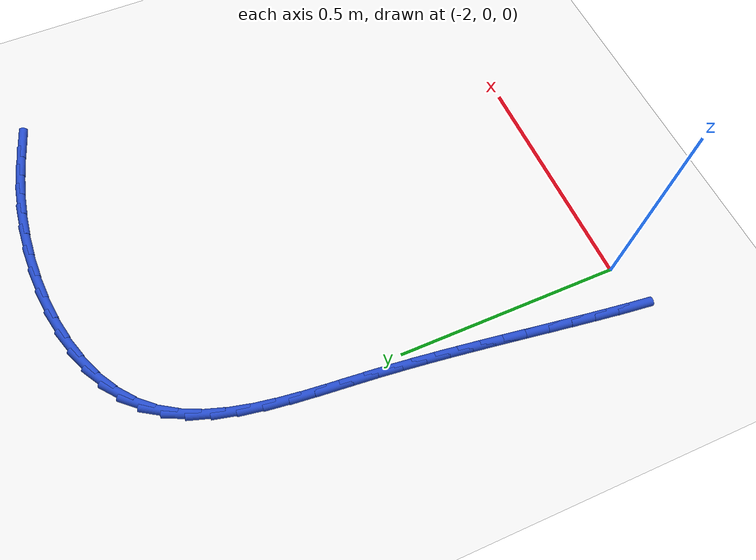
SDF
<sdf version="1.6">
 <world name="default">
  <model name="ground_plane">
   <static>1</static>
   <link name="link">
    <collision name="collision">
     <geometry><plane><normal>0 0 1</normal><size>100 100</size></plane></geometry>
     <surface><friction><ode><mu>100</mu><mu2>50</mu2></ode></friction></surface>
    </collision>
    <visual name="visual">
     <cast_shadows>0</cast_shadows>
     <geometry><plane><normal>0 0 1</normal><size>100 100</size></plane></geometry>
     <material>
      <script><uri>file://media/materials/scripts/gazebo.material</uri><name>Gazebo/WhiteGlow</name></script>
     </material>
    </visual>
   </link>
  </model>
  <model name="line">
   <link name="link_35">
    <pose>-1.1955118502999573 1.0920161708924527 0.01 0 1.57 -0.2964761904887157</pose>
    <collision name="collision">
     <geometry><cylinder><radius>0.01</radius><length>0.08</length></cylinder></geometry>
    </collision>
    <visual name="visual">
     <material>
      <script><name>Gazebo/Blue</name><uri>file://media/materials/scripts/gazebo.material</uri></script>
     </material>
     <geometry><cylinder><radius>0.01</radius><length>0.08</length></cylinder></geometry>
    </visual>
   </link>
   <link name="link_36">
    <pose>-1.2431538624138403 1.1065698260120493 0.01 0 1.57 -0.26022666689466184</pose>
    <collision name="collision">
     <geometry><cylinder><radius>0.01</radius><length>0.08</length></cylinder></geometry>
    </collision>
    <visual name="visual">
     <material>
      <script><name>Gazebo/Blue</name><uri>file://media/materials/scripts/gazebo.material</uri></script>
     </material>
     <geometry><cylinder><radius>0.01</radius><length>0.08</length></cylinder></geometry>
    </visual>
   </link>
   <link name="link_37">
    <pose>-1.2919957524761405 1.119574675917039 0.01 0 1.57 -0.21389366517273364</pose>
    <collision name="collision">
     <geometry><cylinder><radius>0.01</radius><length>0.08</length></cylinder></geometry>
    </collision>
    <visual name="visual">
     <material>
      <script><name>Gazebo/Blue</name><uri>file://media/materials/scripts/gazebo.material</uri></script>
     </material>
     <geometry><cylinder><radius>0.01</radius><length>0.08</length></cylinder></geometry>
    </visual>
   </link>
   <link name="link_38">
    <pose>-1.342411462845619 1.1305257949859497 0.01 0 1.57 -0.1591375782966789</pose>
    <collision name="collision">
     <geometry><cylinder><radius>0.01</radius><length>0.08</length></cylinder></geometry>
    </collision>
    <visual name="visual">
     <material>
      <script><name>Gazebo/Blue</name><uri>file://media/materials/scripts/gazebo.material</uri></script>
     </material>
     <geometry><cylinder><radius>0.01</radius><length>0.08</length></cylinder></geometry>
    </visual>
   </link>
   <link name="link_39">
    <pose>-1.3947478460285339 1.1389255071886293 0.01 0 1.57 -0.10139241929132188</pose>
    <collision name="collision">
     <geometry><cylinder><radius>0.01</radius><length>0.08</length></cylinder></geometry>
    </collision>
    <visual name="visual">
     <material>
      <script><name>Gazebo/Blue</name><uri>file://media/materials/scripts/gazebo.material</uri></script>
     </material>
     <geometry><cylinder><radius>0.01</radius><length>0.08</length></cylinder></geometry>
    </visual>
   </link>
   <link name="link_40">
    <pose>-1.4487971548328704 1.144424554473884 0.01 0 1.57 -0.04336346354686689</pose>
    <collision name="collision">
     <geometry><cylinder><radius>0.01</radius><length>0.08</length></cylinder></geometry>
    </collision>
    <visual name="visual">
     <material>
      <script><name>Gazebo/Blue</name><uri>file://media/materials/scripts/gazebo.material</uri></script>
     </material>
     <geometry><cylinder><radius>0.01</radius><length>0.08</length></cylinder></geometry>
    </visual>
   </link>
   <link name="link_41">
    <pose>-1.5038326067665755 1.1468125792812347 0.01 0 1.57 0.016787465859608688</pose>
    <collision name="collision">
     <geometry><cylinder><radius>0.01</radius><length>0.08</length></cylinder></geometry>
    </collision>
    <visual name="visual">
     <material>
      <script><name>Gazebo/Blue</name><uri>file://media/materials/scripts/gazebo.material</uri></script>
     </material>
     <geometry><cylinder><radius>0.01</radius><length>0.08</length></cylinder></geometry>
    </visual>
   </link>
   <link name="link_42">
    <pose>-1.5591074521599775 1.1458845675225415 0.01 0 1.57 0.08105747216658196</pose>
    <collision name="collision">
     <geometry><cylinder><radius>0.01</radius><length>0.08</length></cylinder></geometry>
    </collision>
    <visual name="visual">
     <material>
      <script><name>Gazebo/Blue</name><uri>file://media/materials/scripts/gazebo.material</uri></script>
     </material>
     <geometry><cylinder><radius>0.01</radius><length>0.08</length></cylinder></geometry>
    </visual>
   </link>
   <link name="link_43">
    <pose>-1.6138749413434055 1.1414355051096652 0.01 0 1.57 0.15159583432409895</pose>
    <collision name="collision">
     <geometry><cylinder><radius>0.01</radius><length>0.08</length></cylinder></geometry>
    </collision>
    <visual name="visual">
     <material>
      <script><name>Gazebo/Blue</name><uri>file://media/materials/scripts/gazebo.material</uri></script>
     </material>
     <geometry><cylinder><radius>0.01</radius><length>0.08</length></cylinder></geometry>
    </visual>
   </link>
   <link name="link_44">
    <pose>-1.6673883246471901 1.1332603779544663 0.01 0 1.57 0.23082597803693913</pose>
    <collision name="collision">
     <geometry><cylinder><radius>0.01</radius><length>0.08</length></cylinder></geometry>
    </collision>
    <visual name="visual">
     <material>
      <script><name>Gazebo/Blue</name><uri>file://media/materials/scripts/gazebo.material</uri></script>
     </material>
     <geometry><cylinder><radius>0.01</radius><length>0.08</length></cylinder></geometry>
    </visual>
   </link>
   <link name="link_45">
    <pose>-1.718900852401659 1.1211541719688052 0.01 0 1.57 0.32151660270292787</pose>
    <collision name="collision">
     <geometry><cylinder><radius>0.01</radius><length>0.08</length></cylinder></geometry>
    </collision>
    <visual name="visual">
     <material>
      <script><name>Gazebo/Blue</name><uri>file://media/materials/scripts/gazebo.material</uri></script>
     </material>
     <geometry><cylinder><radius>0.01</radius><length>0.08</length></cylinder></geometry>
    </visual>
   </link>
   <link name="link_46">
    <pose>-1.7676657749371425 1.1049118730645424 0.01 0 1.57 0.4267350443168989</pose>
    <collision name="collision">
     <geometry><cylinder><radius>0.01</radius><length>0.08</length></cylinder></geometry>
    </collision>
    <visual name="visual">
     <material>
      <script><name>Gazebo/Blue</name><uri>file://media/materials/scripts/gazebo.material</uri></script>
     </material>
     <geometry><cylinder><radius>0.01</radius><length>0.08</length></cylinder></geometry>
    </visual>
   </link>
   <link name="link_47">
    <pose>-1.8129363425839689 1.0843284671535387 0.01 0 1.57 0.549541950563444</pose>
    <collision name="collision">
     <geometry><cylinder><radius>0.01</radius><length>0.08</length></cylinder></geometry>
    </collision>
    <visual name="visual">
     <material>
      <script><name>Gazebo/Blue</name><uri>file://media/materials/scripts/gazebo.material</uri></script>
     </material>
     <geometry><cylinder><radius>0.01</radius><length>0.08</length></cylinder></geometry>
    </visual>
   </link>
   <link name="link_48">
    <pose>-1.8539658056724684 1.0591989401476543 0.01 0 1.57 0.6922111007255526</pose>
    <collision name="collision">
     <geometry><cylinder><radius>0.01</radius><length>0.08</length></cylinder></geometry>
    </collision>
    <visual name="visual">
     <material>
      <script><name>Gazebo/Blue</name><uri>file://media/materials/scripts/gazebo.material</uri></script>
     </material>
     <geometry><cylinder><radius>0.01</radius><length>0.08</length></cylinder></geometry>
    </visual>
   </link>
   <link name="link_49">
    <pose>-1.8900074145329693 1.0293182779587495 0.01 0 1.57 0.8545032119874683</pose>
    <collision name="collision">
     <geometry><cylinder><radius>0.01</radius><length>0.08</length></cylinder></geometry>
    </collision>
    <visual name="visual">
     <material>
      <script><name>Gazebo/Blue</name><uri>file://media/materials/scripts/gazebo.material</uri></script>
     </material>
     <geometry><cylinder><radius>0.01</radius><length>0.08</length></cylinder></geometry>
    </visual>
   </link>
   <link name="link_50">
    <pose>-1.9203271336976069 0.9944892726972168 0.01 0 1.57 1.017493949531124</pose>
    <collision name="collision">
     <geometry><cylinder><radius>0.01</radius><length>0.08</length></cylinder></geometry>
    </collision>
    <visual name="visual">
     <material>
      <script><name>Gazebo/Blue</name><uri>file://media/materials/scripts/gazebo.material</uri></script>
     </material>
     <geometry><cylinder><radius>0.01</radius><length>0.08</length></cylinder></geometry>
    </visual>
   </link>
   <link name="link_51">
    <pose>-1.9447904069987882 0.9548827816107704 0.01 0 1.57 1.1545128135580256</pose>
    <collision name="collision">
     <geometry><cylinder><radius>0.01</radius><length>0.08</length></cylinder></geometry>
    </collision>
    <visual name="visual">
     <material>
      <script><name>Gazebo/Blue</name><uri>file://media/materials/scripts/gazebo.material</uri></script>
     </material>
     <geometry><cylinder><radius>0.01</radius><length>0.08</length></cylinder></geometry>
    </visual>
   </link>
   <link name="link_52">
    <pose>-1.9641084302780705 0.9111889323026608 0.01 0 1.57 1.2631930272044491</pose>
    <collision name="collision">
     <geometry><cylinder><radius>0.01</radius><length>0.08</length></cylinder></geometry>
    </collision>
    <visual name="visual">
     <material>
      <script><name>Gazebo/Blue</name><uri>file://media/materials/scripts/gazebo.material</uri></script>
     </material>
     <geometry><cylinder><radius>0.01</radius><length>0.08</length></cylinder></geometry>
    </visual>
   </link>
   <link name="link_53">
    <pose>-1.9790562043151552 0.8641370269953603 0.01 0 1.57 1.346143572806285</pose>
    <collision name="collision">
     <geometry><cylinder><radius>0.01</radius><length>0.08</length></cylinder></geometry>
    </collision>
    <visual name="visual">
     <material>
      <script><name>Gazebo/Blue</name><uri>file://media/materials/scripts/gazebo.material</uri></script>
     </material>
     <geometry><cylinder><radius>0.01</radius><length>0.08</length></cylinder></geometry>
    </visual>
   </link>
   <link name="link_54">
    <pose>-1.9904087298897393 0.8144563679113388 0.01 0 1.57 1.4068628297916659</pose>
    <collision name="collision">
     <geometry><cylinder><radius>0.01</radius><length>0.08</length></cylinder></geometry>
    </collision>
    <visual name="visual">
     <material>
      <script><name>Gazebo/Blue</name><uri>file://media/materials/scripts/gazebo.material</uri></script>
     </material>
     <geometry><cylinder><radius>0.01</radius><length>0.08</length></cylinder></geometry>
    </visual>
   </link>
   <link name="link_55">
    <pose>-1.9989410077815235 0.7628762572730675 0.01 0 1.57 1.4484344072373352</pose>
    <collision name="collision">
     <geometry><cylinder><radius>0.01</radius><length>0.08</length></cylinder></geometry>
    </collision>
    <visual name="visual">
     <material>
      <script><name>Gazebo/Blue</name><uri>file://media/materials/scripts/gazebo.material</uri></script>
     </material>
     <geometry><cylinder><radius>0.01</radius><length>0.08</length></cylinder></geometry>
    </visual>
   </link>
   <link name="link_56">
    <pose>-2.005428038770206 0.7101259973030183 0.01 0 1.57 1.4730327275939075</pose>
    <collision name="collision">
     <geometry><cylinder><radius>0.01</radius><length>0.08</length></cylinder></geometry>
    </collision>
    <visual name="visual">
     <material>
      <script><name>Gazebo/Blue</name><uri>file://media/materials/scripts/gazebo.material</uri></script>
     </material>
     <geometry><cylinder><radius>0.01</radius><length>0.08</length></cylinder></geometry>
    </visual>
   </link>
   <link name="link_57">
    <pose>-2.010644823635487 0.6569348902236612 0.01 0 1.57 1.481782591790295</pose>
    <collision name="collision">
     <geometry><cylinder><radius>0.01</radius><length>0.08</length></cylinder></geometry>
    </collision>
    <visual name="visual">
     <material>
      <script><name>Gazebo/Blue</name><uri>file://media/materials/scripts/gazebo.material</uri></script>
     </material>
     <geometry><cylinder><radius>0.01</radius><length>0.08</length></cylinder></geometry>
    </visual>
   </link>
   <link name="link_58">
    <pose>-2.015366363157065 0.6040322382574687 0.01 0 1.57 1.4753517745678855</pose>
    <collision name="collision">
     <geometry><cylinder><radius>0.01</radius><length>0.08</length></cylinder></geometry>
    </collision>
    <visual name="visual">
     <material>
      <script><name>Gazebo/Blue</name><uri>file://media/materials/scripts/gazebo.material</uri></script>
     </material>
     <geometry><cylinder><radius>0.01</radius><length>0.08</length></cylinder></geometry>
    </visual>
   </link>
   <link name="link_59">
    <pose>-2.0203369404370792 0.5521123060791184 0.01 0 1.57 1.462765319706587</pose>
    <collision name="collision">
     <geometry><cylinder><radius>0.01</radius><length>0.08</length></cylinder></geometry>
    </collision>
    <visual name="visual">
     <material>
      <script><name>Gazebo/Blue</name><uri>file://media/materials/scripts/gazebo.material</uri></script>
     </material>
     <geometry><cylinder><radius>0.01</radius><length>0.08</length></cylinder></geometry>
    </visual>
   </link>
   <link name="link_60">
    <pose>-2.025842633454997 0.5013467152092551 0.01 0 1.57 1.4514870694990758</pose>
    <collision name="collision">
     <geometry><cylinder><radius>0.01</radius><length>0.08</length></cylinder></geometry>
    </collision>
    <visual name="visual">
     <material>
      <script><name>Gazebo/Blue</name><uri>file://media/materials/scripts/gazebo.material</uri></script>
     </material>
     <geometry><cylinder><radius>0.01</radius><length>0.08</length></cylinder></geometry>
    </visual>
   </link>
   <link name="link_61">
    <pose>-2.031817519024674 0.4515055835835264 0.01 0 1.57 1.4419463805792232</pose>
    <collision name="collision">
     <geometry><cylinder><radius>0.01</radius><length>0.08</length></cylinder></geometry>
    </collision>
    <visual name="visual">
     <material>
      <script><name>Gazebo/Blue</name><uri>file://media/materials/scripts/gazebo.material</uri></script>
     </material>
     <geometry><cylinder><radius>0.01</radius><length>0.08</length></cylinder></geometry>
    </visual>
   </link>
   <link name="link_62">
    <pose>-2.038186661105561 0.40234874879277044 0.01 0 1.57 1.434345251638677</pose>
    <collision name="collision">
     <geometry><cylinder><radius>0.01</radius><length>0.08</length></cylinder></geometry>
    </collision>
    <visual name="visual">
     <material>
      <script><name>Gazebo/Blue</name><uri>file://media/materials/scripts/gazebo.material</uri></script>
     </material>
     <geometry><cylinder><radius>0.01</radius><length>0.08</length></cylinder></geometry>
    </visual>
   </link>
   <link name="link_63">
    <pose>-2.0448751236571066 0.35363604842782387 0.01 0 1.57 1.428838086350353</pose>
    <collision name="collision">
     <geometry><cylinder><radius>0.01</radius><length>0.08</length></cylinder></geometry>
    </collision>
    <visual name="visual">
     <material>
      <script><name>Gazebo/Blue</name><uri>file://media/materials/scripts/gazebo.material</uri></script>
     </material>
     <geometry><cylinder><radius>0.01</radius><length>0.08</length></cylinder></geometry>
    </visual>
   </link>
   <link name="link_64">
    <pose>-2.0518079706387584 0.3051273200795243 0.01 0 1.57 1.4255234061139481</pose>
    <collision name="collision">
     <geometry><cylinder><radius>0.01</radius><length>0.08</length></cylinder></geometry>
    </collision>
    <visual name="visual">
     <material>
      <script><name>Gazebo/Blue</name><uri>file://media/materials/scripts/gazebo.material</uri></script>
     </material>
     <geometry><cylinder><radius>0.01</radius><length>0.08</length></cylinder></geometry>
    </visual>
   </link>
   <link name="link_65">
    <pose>-2.058910266009967 0.25658240133870885 0.01 0 1.57 1.4244390592110066</pose>
    <collision name="collision">
     <geometry><cylinder><radius>0.01</radius><length>0.08</length></cylinder></geometry>
    </collision>
    <visual name="visual">
     <material>
      <script><name>Gazebo/Blue</name><uri>file://media/materials/scripts/gazebo.material</uri></script>
     </material>
     <geometry><cylinder><radius>0.01</radius><length>0.08</length></cylinder></geometry>
    </visual>
   </link>
   <link name="link_66">
    <pose>-2.06610707373018 0.20776112979621408 0.01 0 1.57 1.425561323069314</pose>
    <collision name="collision">
     <geometry><cylinder><radius>0.01</radius><length>0.08</length></cylinder></geometry>
    </collision>
    <visual name="visual">
     <material>
      <script><name>Gazebo/Blue</name><uri>file://media/materials/scripts/gazebo.material</uri></script>
     </material>
     <geometry><cylinder><radius>0.01</radius><length>0.08</length></cylinder></geometry>
    </visual>
   </link>
   <link name="link_67">
    <pose>-2.073323457758846 0.15842334304287814 0.01 0 1.57 1.4288078701041589</pose>
    <collision name="collision">
     <geometry><cylinder><radius>0.01</radius><length>0.08</length></cylinder></geometry>
    </collision>
    <visual name="visual">
     <material>
      <script><name>Gazebo/Blue</name><uri>file://media/materials/scripts/gazebo.material</uri></script>
     </material>
     <geometry><cylinder><radius>0.01</radius><length>0.08</length></cylinder></geometry>
    </visual>
   </link>
   <link name="link_68">
    <pose>-2.080484482055415 0.1083288786695375 0.01 0 1.57 1.4340821636591519</pose>
    <collision name="collision">
     <geometry><cylinder><radius>0.01</radius><length>0.08</length></cylinder></geometry>
    </collision>
    <visual name="visual">
     <material>
      <script><name>Gazebo/Blue</name><uri>file://media/materials/scripts/gazebo.material</uri></script>
     </material>
     <geometry><cylinder><radius>0.01</radius><length>0.08</length></cylinder></geometry>
    </visual>
   </link>
   <link name="link_69">
    <pose>-2.08751215990187 0.05724537120655939 0.01 0 1.57 1.4423112514132508</pose>
    <collision name="collision">
     <geometry><cylinder><radius>0.01</radius><length>0.08</length></cylinder></geometry>
    </collision>
    <visual name="visual">
     <material>
      <script><name>Gazebo/Blue</name><uri>file://media/materials/scripts/gazebo.material</uri></script>
     </material>
     <geometry><cylinder><radius>0.01</radius><length>0.08</length></cylinder></geometry>
    </visual>
   </link>
   <link name="link_70">
    <pose>-2.0942408412867466 0.0051645055487333094 0.01 0 1.57 1.4546291132097013</pose>
    <collision name="collision">
     <geometry><cylinder><radius>0.01</radius><length>0.08</length></cylinder></geometry>
    </collision>
    <visual name="visual">
     <material>
      <script><name>Gazebo/Blue</name><uri>file://media/materials/scripts/gazebo.material</uri></script>
     </material>
     <geometry><cylinder><radius>0.01</radius><length>0.08</length></cylinder></geometry>
    </visual>
   </link>
  </model>
 </world>
</sdf>
